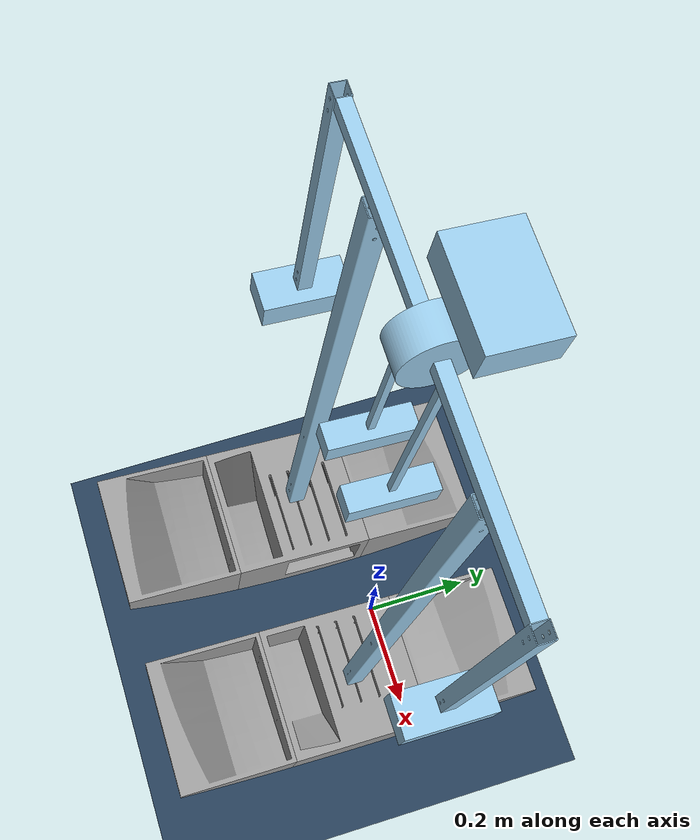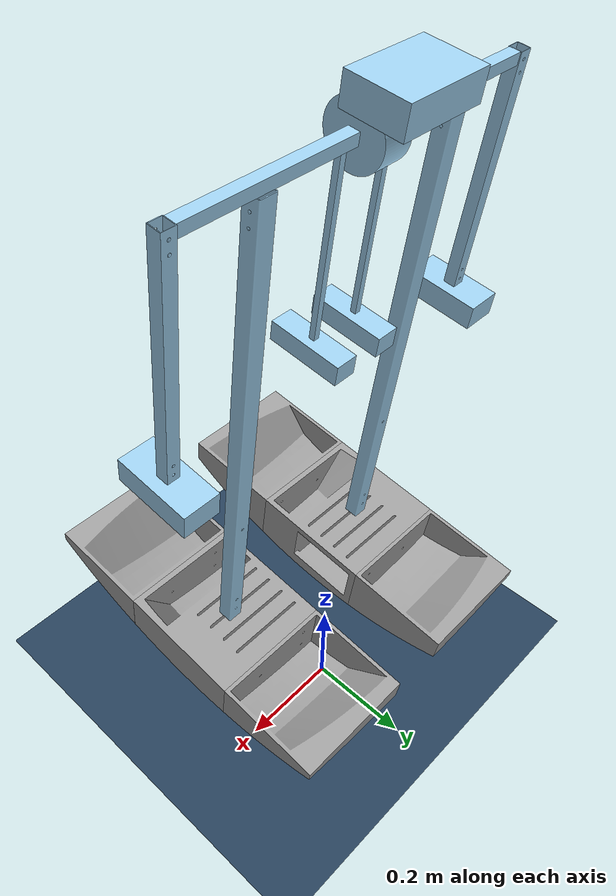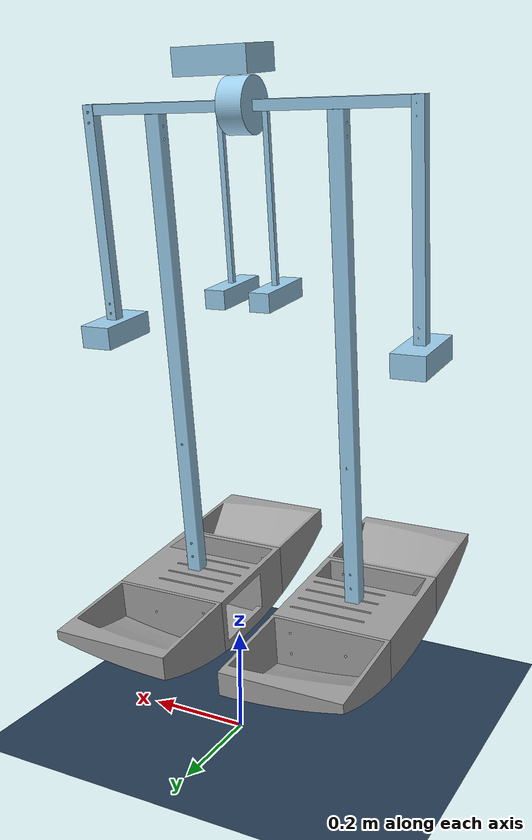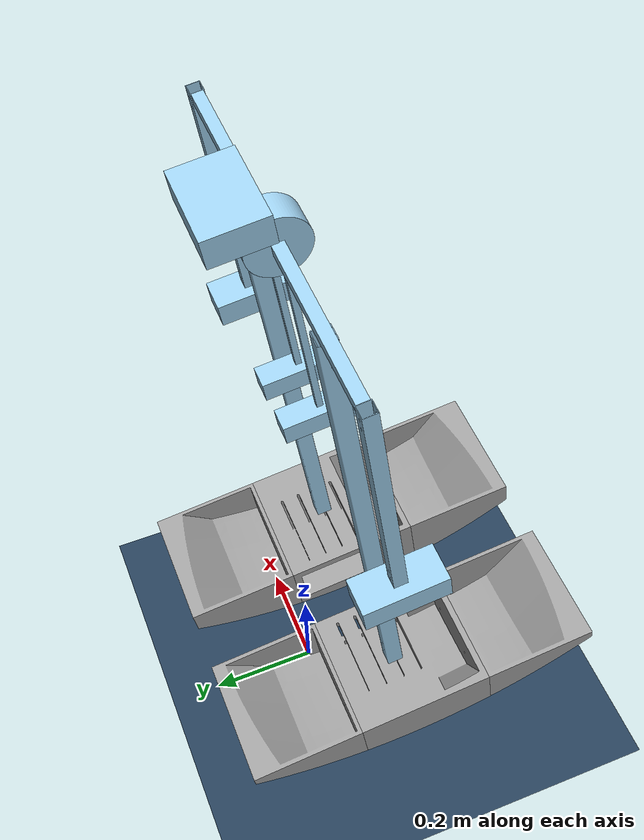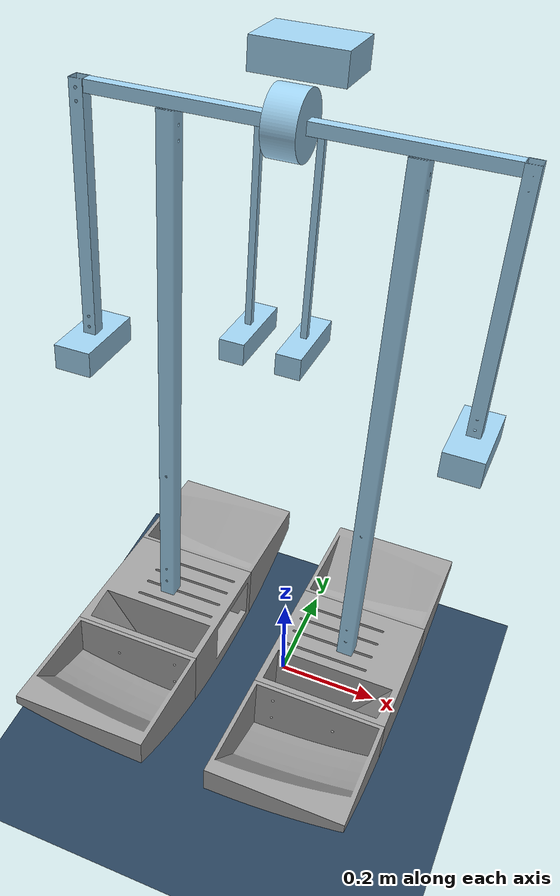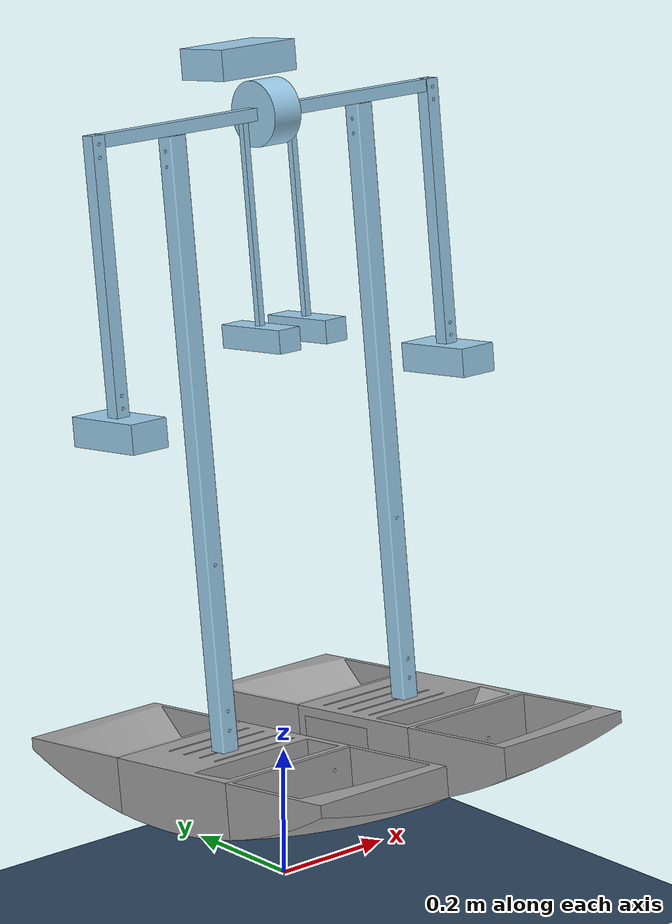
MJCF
<mujoco model="scene">
    <!-- MuJoCo boundary file: +x forward, +y robot-left, +z up internally. -->
    <include file="robot.xml" />
    <option solver="Newton" timestep="0.002" iterations="100"/>
    <visual>
        <headlight diffuse="0.6 0.6 0.6" ambient="0.3 0.3 0.3" specular="0 0 0" />
        <rgba haze="0.15 0.25 0.35 1" />
        <global azimuth="160" elevation="-20" />
    </visual>

    <asset>
        <texture type="skybox" builtin="gradient" rgb1="0.3 0.5 0.7" rgb2="0 0 0" width="512"
            height="3072" />
        <texture type="2d" name="groundplane" builtin="checker" mark="edge" rgb1="0.2 0.3 0.4"
            rgb2="0.1 0.2 0.3"
            markrgb="0.8 0.8 0.8" width="300" height="300" />
        <material name="groundplane" texture="groundplane" texuniform="true" texrepeat="5 5"
            reflectance="0.2" />
    </asset>

    <worldbody>
        <light pos="0 0 3.5" dir="0 0 -1" directional="true" />
        <geom name="floor" size="0 0 0.05" pos="0 0 0" friction = "0.5 0.003 0.2" type="plane" material="groundplane" condim = "3"/>
    </worldbody>
</mujoco>

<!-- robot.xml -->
<!-- Generated using onshape-to-robot -->
<!-- Onshape https://cad.onshape.com/documents/17c5c8d07f4ec308269aab5c/w/49bf5d1c311d43a28f235e29/e/5fc1d1e4321a0935153c1d8f -->
<mujoco model="bigfoot">
  <compiler angle="radian" meshdir="assets" autolimits="true"/>
  <default>
    <default class="bigfoot">
      <joint frictionloss="0.4" armature="0.0039"/>
      <motor ctrllimited="true" ctrlrange="-25 25"/>
      <default class="visual">
        <geom type="mesh" contype="0" conaffinity="0" group="2"/>
      </default>
      <default class="collision">
        <geom group="3"/>
      </default>
    </default>
  </default>
  <worldbody>
    <!-- Link motor -->
    <body name="motor" pos="0 0 1.2" quat="0.998197 -0.060035 0 0" childclass="bigfoot">
      <freejoint name="motor_freejoint"/>
      <inertial pos="-0.0315273 0.0156149 -0.361786" mass="4.428" fullinertia="0.755079 0.877346 0.209946 -0.00292345 -0.0745883 -0.0236165"/>
      <!-- Part simplified_motor___arm_rod -->
      <geom type="mesh" class="visual" pos="-0.33019 0.0118675 -0.00616395" quat="0.5 0.5 0.5 0.5" mesh="simplified_motor___arm_rod" material="simplified_motor___arm_rod_material"/>
      <geom type="mesh" class="collision" pos="-0.33019 0.0118675 -0.00616395" quat="0.5 0.5 0.5 0.5" mesh="simplified_motor___arm_rod" material="simplified_motor___arm_rod_material"/>
      <!-- Part footstl_scaled_v4_mirrored -->
      <geom name = "right_foot_1" type="mesh" class="visual" pos="-0.200253 0.0223675 -0.930064" quat="0 1 0 0" mesh="footstl_scaled_v4_mirrored" material="footstl_scaled_v4_mirrored_material"/>
      <geom name = "right_foot_1_col" type="mesh" class="collision" pos="-0.200253 0.0223675 -0.930064" quat="0 1 0 0" mesh="footstl_scaled_v4_mirrored" material="footstl_scaled_v4_mirrored_material"/>
      <!-- Part cf_rod___leg -->
      <geom type="mesh" class="visual" pos="-0.200253 0.0118675 -0.930064" quat="1 0 -0 -0" mesh="cf_rod___leg" material="cf_rod___leg_material"/>
      <geom type="mesh" class="collision" pos="-0.200253 0.0118675 -0.930064" quat="1 0 -0 -0" mesh="cf_rod___leg" material="cf_rod___leg_material"/>
      <!-- Part raspberry_pi___battery___motor_cover -->
      <geom type="mesh" class="visual" pos="-0.0208702 0.0653675 0.0930361" quat="0 1 0 0" mesh="raspberry_pi___battery___motor_cover" material="raspberry_pi___battery___motor_cover_material"/>
      <geom type="mesh" class="collision" pos="-0.0208702 0.0653675 0.0930361" quat="0 1 0 0" mesh="raspberry_pi___battery___motor_cover" material="raspberry_pi___battery___motor_cover_material"/>
      <!-- Part footstl_scaled_v4_mirrored_2 -->
      <geom name = "right_foot_2" type="mesh" class="visual" pos="-0.200253 0.0223675 -0.930064" quat="0 1 0 0" mesh="footstl_scaled_v4_mirrored__2" material="footstl_scaled_v4_mirrored__2_material"/>
      <geom name = "right_foot_2_col" type="mesh" class="collision" pos="-0.200253 0.0223675 -0.930064" quat="0 1 0 0" mesh="footstl_scaled_v4_mirrored__2" material="footstl_scaled_v4_mirrored__2_material"/>
      <!-- Part footstl_scaled_v4_mirrored_3 -->
      <geom name = "right_foot_3" type="mesh" class="visual" pos="-0.200253 0.0223675 -0.930064" quat="0 1 0 0" mesh="footstl_scaled_v4_mirrored__3" material="footstl_scaled_v4_mirrored__3_material"/>
      <geom name = "right_foot_3_col" type="mesh" class="collision" pos="-0.200253 0.0223675 -0.930064" quat="0 1 0 0" mesh="footstl_scaled_v4_mirrored__3" material="footstl_scaled_v4_mirrored__3_material"/>
      <!-- Part arm_rod -->
      <geom type="mesh" class="visual" pos="0.299562 0.0118675 0.00333605" quat="0 -0 -0 1" mesh="arm_rod" material="arm_rod_material"/>
      <geom type="mesh" class="collision" pos="0.299562 0.0118675 0.00333605" quat="0 -0 -0 1" mesh="arm_rod" material="arm_rod_material"/>
      <!-- Part exo_hip_rod -->
      <geom type="mesh" class="visual" pos="-0.0658702 0.0118675 -0.315464" quat="1 -0 0 -0" mesh="exo_hip_rod" material="exo_hip_rod_material"/>
      <geom type="mesh" class="collision" pos="-0.0658702 0.0118675 -0.315464" quat="1 -0 0 -0" mesh="exo_hip_rod" material="exo_hip_rod_material"/>
      <!-- Part hip_inner_right -->
      <geom type="mesh" class="visual" pos="-0.0658702 0.0118675 -0.350464" quat="1 0 -0 0" mesh="hip_inner_right" material="hip_inner_right_material"/>
      <geom type="mesh" class="collision" pos="-0.0658702 0.0118675 -0.350464" quat="1 0 -0 0" mesh="hip_inner_right" material="hip_inner_right_material"/>
      <!-- Part motor -->
      <geom type="mesh" class="visual" pos="-0.0458702 0.0118675 -0.00616395" quat="0.707107 0 0.707107 -0" mesh="motor" material="motor_material"/>
      <geom type="mesh" class="collision" pos="-0.0458702 0.0118675 -0.00616395" quat="0.707107 0 0.707107 -0" mesh="motor" material="motor_material"/>
      <!-- Part battery -->
      <geom type="mesh" class="visual" pos="0.299562 0.0118675 -0.446664" quat="1 0 -0 -0" mesh="battery" material="battery_material"/>
      <geom type="mesh" class="collision" pos="0.299562 0.0118675 -0.446664" quat="1 0 -0 -0" mesh="battery" material="battery_material"/>
      <!-- Link simplified_motor___arm_rod -->
      <body name="simplified_motor___arm_rod" pos="0.00412982 0.0118675 -0.00616395" quat="1.923e-09 0.707107 -1.923e-09 -0.707107">
        <!-- Joint from motor to simplified_motor___arm_rod -->
        <joint axis="0 0 1" name="hip" type="hinge"/>
        <inertial pos="0.524746 0.00502152 0.00971834" mass="3.088" fullinertia="0.205965 0.58165 0.458108 -0.00713253 0.0666074 0.00250964"/>
        <!-- Part hip_inner_right_2 -->
        <geom type="mesh" class="visual" pos="0.3443 0 -0.02" quat="0 0.707107 0 -0.707107" mesh="hip_inner_right" material="hip_inner_right_material"/>
        <geom type="mesh" class="collision" pos="0.3443 0 -0.02" quat="0 0.707107 0 -0.707107" mesh="hip_inner_right" material="hip_inner_right_material"/>
        <!-- Part arm_rod_2 -->
        <geom type="mesh" class="visual" pos="-0.0095 -0 0.345432" quat="0 -0.707107 -0 0.707107" mesh="arm_rod" material="arm_rod_material"/>
        <geom type="mesh" class="collision" pos="-0.0095 -0 0.345432" quat="0 -0.707107 -0 0.707107" mesh="arm_rod" material="arm_rod_material"/>
        <!-- Part footstl_scaled_v4 -->
        <geom name = "left_foot_1" type="mesh" class="visual" pos="0.9239 -0.0105 -0.154383" quat="0.707107 0 -0.707107 -0" mesh="footstl_scaled_v4" material="footstl_scaled_v4_material"/>
        <geom name = "left_foot_1_col" type="mesh" class="collision" pos="0.9239 -0.0105 -0.154383" quat="0.707107 0 -0.707107 -0" mesh="footstl_scaled_v4" material="footstl_scaled_v4_material"/>
        <!-- Part cf_rod___leg_2 -->
        <geom type="mesh" class="visual" pos="0.9239 0 -0.154383" quat="0 0.707107 0 -0.707107" mesh="cf_rod___leg" material="cf_rod___leg_material"/>
        <geom type="mesh" class="collision" pos="0.9239 0 -0.154383" quat="0 0.707107 0 -0.707107" mesh="cf_rod___leg" material="cf_rod___leg_material"/>
        <!-- Part simplified_motor___arm_rod_2 -->
        <geom type="mesh" class="visual" pos="0 -0 -0.28432" quat="1 0 0 0" mesh="simplified_motor___arm_rod" material="simplified_motor___arm_rod_material"/>
        <geom type="mesh" class="collision" pos="0 -0 -0.28432" quat="1 0 0 0" mesh="simplified_motor___arm_rod" material="simplified_motor___arm_rod_material"/>
        <!-- Part footstl_scaled_v4_2 -->
        <geom name = "left_foot_2" type="mesh" class="visual" pos="0.9239 -0.0105 -0.154383" quat="0.707107 0 -0.707107 0" mesh="footstl_scaled_v4__2" material="footstl_scaled_v4__2_material"/>
        <geom name = "left_foot_2_col" type="mesh" class="collision" pos="0.9239 -0.0105 -0.154383" quat="0.707107 0 -0.707107 0" mesh="footstl_scaled_v4__2" material="footstl_scaled_v4__2_material"/>
        <!-- Part battery_2 -->
        <geom type="mesh" class="visual" pos="0.4405 0 0.345432" quat="0.707107 0 -0.707107 -0" mesh="battery" material="battery_material"/>
        <geom type="mesh" class="collision" pos="0.4405 0 0.345432" quat="0.707107 0 -0.707107 -0" mesh="battery" material="battery_material"/>
        <!-- Part exo_hip_rod_2 -->
        <geom type="mesh" class="visual" pos="0.3093 0 -0.02" quat="0 0.707107 0 -0.707107" mesh="exo_hip_rod" material="exo_hip_rod_material"/>
        <geom type="mesh" class="collision" pos="0.3093 0 -0.02" quat="0 0.707107 0 -0.707107" mesh="exo_hip_rod" material="exo_hip_rod_material"/>
        <!-- Part footstl_scaled_v4_3 -->
        <geom name = "left_foot_3" type="mesh" class="visual" pos="0.9239 -0.0105 -0.154383" quat="0.707107 0 -0.707107 -0" mesh="footstl_scaled_v4__3" material="footstl_scaled_v4__3_material"/>
        <geom name = "left_foot_3_col" type="mesh" class="collision" pos="0.9239 -0.0105 -0.154383" quat="0.707107 0 -0.707107 -0" mesh="footstl_scaled_v4__3" material="footstl_scaled_v4__3_material"/>
      </body>
    </body>
  </worldbody>
  <asset>
    <mesh file="footstl_scaled_v4_mirrored__2.stl"/>
    <mesh file="hip_inner_right.stl"/>
    <mesh file="raspberry_pi___battery___motor_cover.stl"/>
    <mesh file="footstl_scaled_v4_mirrored.stl"/>
    <mesh file="footstl_scaled_v4_mirrored__3.stl"/>
    <mesh file="cf_rod___leg.stl"/>
    <mesh file="footstl_scaled_v4.stl"/>
    <mesh file="arm_rod.stl"/>
    <mesh file="exo_hip_rod.stl"/>
    <mesh file="motor.stl"/>
    <mesh file="footstl_scaled_v4__2.stl"/>
    <mesh file="battery.stl"/>
    <mesh file="simplified_motor___arm_rod.stl"/>
    <mesh file="footstl_scaled_v4__3.stl"/>
    <material name="simplified_motor___arm_rod_material" rgba="0.615686 0.811765 0.929412 1"/>
    <material name="footstl_scaled_v4_mirrored_material" rgba="0.627451 0.627451 0.627451 1"/>
    <material name="cf_rod___leg_material" rgba="0.615686 0.811765 0.929412 1"/>
    <material name="raspberry_pi___battery___motor_cover_material" rgba="0.615686 0.811765 0.929412 1"/>
    <material name="footstl_scaled_v4_mirrored__2_material" rgba="0.627451 0.627451 0.627451 1"/>
    <material name="footstl_scaled_v4_mirrored__3_material" rgba="0.627451 0.627451 0.627451 1"/>
    <material name="arm_rod_material" rgba="0.615686 0.811765 0.929412 1"/>
    <material name="exo_hip_rod_material" rgba="0.615686 0.811765 0.929412 1"/>
    <material name="hip_inner_right_material" rgba="0.615686 0.811765 0.929412 1"/>
    <material name="motor_material" rgba="0.615686 0.811765 0.929412 1"/>
    <material name="battery_material" rgba="0.615686 0.811765 0.929412 1"/>
    <material name="footstl_scaled_v4_material" rgba="0.627451 0.627451 0.627451 1"/>
    <material name="footstl_scaled_v4__2_material" rgba="0.627451 0.627451 0.627451 1"/>
    <material name="footstl_scaled_v4__3_material" rgba="0.627451 0.627451 0.627451 1"/>
  </asset>
  <actuator>
    <motor class="bigfoot" name="hip" joint="hip" ctrlrange = "-25.0 25.0"/>
  </actuator>
  <equality/>
</mujoco>
